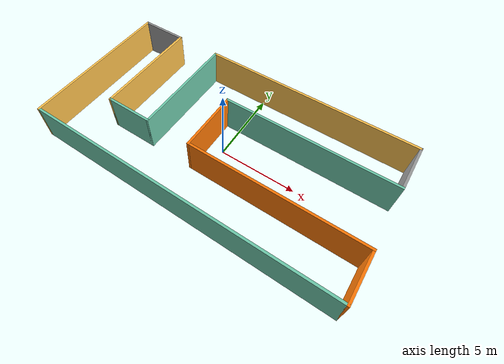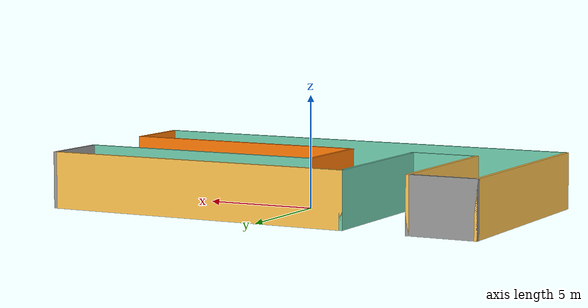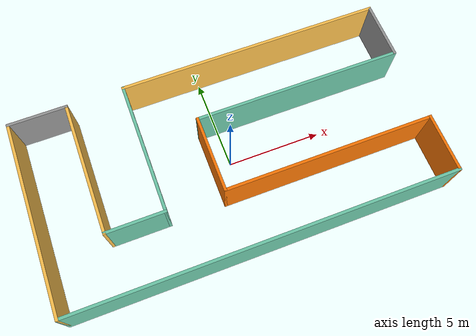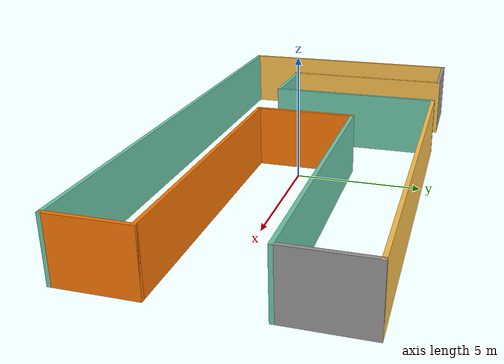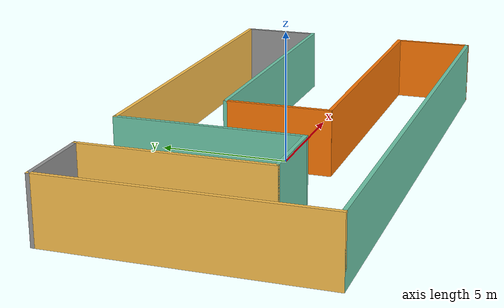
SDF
<?xml version='1.0'?>
<sdf version='1.6'>
  <model name='simplebuilding'>
    <pose frame=''>-0 0 0 0 -0 0</pose>
    <link name='Wall_0'>
      <collision name='Wall_0_Collision'>
        <geometry>
          <box>
            <size>10.15 0.15 2.5</size>
          </box>
        </geometry>
        <pose frame=''>0 0 1.25 0 -0 0</pose>
      </collision>
      <visual name='Wall_0_Visual'>
        <pose frame=''>0 0 1.25 0 -0 0</pose>
        <geometry>
          <box>
            <size>10.15 0.15 2.5</size>
          </box>
        </geometry>
        <material>
          <script>
            <uri>file://media/materials/scripts/gazebo.material</uri>
            <name>Gazebo/Grey</name>
          </script>
          <ambient>1 0.764706 0.305882 1</ambient>
        </material>
        <meta>
          <layer>0</layer>
        </meta>
      </visual>
      <pose frame=''>-10 0 0 0 0 -1.5708</pose>
    </link>
    <link name='Wall_10'>
      <collision name='Wall_10_Collision'>
        <geometry>
          <box>
            <size>7.15 0.15 2.5</size>
          </box>
        </geometry>
        <pose frame=''>0 0 1.25 0 -0 0</pose>
      </collision>
      <visual name='Wall_10_Visual'>
        <pose frame=''>0 0 1.25 0 -0 0</pose>
        <geometry>
          <box>
            <size>7.15 0.15 2.5</size>
          </box>
        </geometry>
        <material>
          <script>
            <uri>file://media/materials/scripts/gazebo.material</uri>
            <name>Gazebo/Grey</name>
          </script>
          <ambient>0.435294 0.796078 0.67451 1</ambient>
        </material>
        <meta>
          <layer>0</layer>
        </meta>
      </visual>
      <pose frame=''>-4 1.5 0 0 -0 1.5708</pose>
    </link>
    <link name='Wall_12'>
      <collision name='Wall_12_Collision'>
        <geometry>
          <box>
            <size>14.15 0.15 2.5</size>
          </box>
        </geometry>
        <pose frame=''>0 0 1.25 0 -0 0</pose>
      </collision>
      <visual name='Wall_12_Visual'>
        <pose frame=''>0 0 1.25 0 -0 0</pose>
        <geometry>
          <box>
            <size>14.15 0.15 2.5</size>
          </box>
        </geometry>
        <material>
          <script>
            <uri>file://media/materials/scripts/gazebo.material</uri>
            <name>Gazebo/Grey</name>
          </script>
          <ambient>1 0.764706 0.305882 1</ambient>
        </material>
        <meta>
          <layer>0</layer>
        </meta>
      </visual>
      <pose frame=''>3 5 0 0 -0 0</pose>
    </link>
    <link name='Wall_13'>
      <collision name='Wall_13_Collision'>
        <geometry>
          <box>
            <size>3.15 0.15 2.5</size>
          </box>
        </geometry>
        <pose frame=''>0 0 1.25 0 -0 0</pose>
      </collision>
      <visual name='Wall_13_Visual'>
        <pose frame=''>0 0 1.25 0 -0 0</pose>
        <geometry>
          <box>
            <size>3.15 0.15 2.5</size>
          </box>
        </geometry>
        <material>
          <script>
            <uri>file://media/materials/scripts/gazebo.material</uri>
            <name>Gazebo/Grey</name>
          </script>
          <ambient>1 1 1 1</ambient>
        </material>
        <meta>
          <layer>0</layer>
        </meta>
      </visual>
      <pose frame=''>10 3.5 0 0 0 -1.5708</pose>
    </link>
    <link name='Wall_15'>
      <collision name='Wall_15_Collision'>
        <geometry>
          <box>
            <size>11.15 0.15 2.5</size>
          </box>
        </geometry>
        <pose frame=''>0 0 1.25 0 -0 0</pose>
      </collision>
      <visual name='Wall_15_Visual'>
        <pose frame=''>0 0 1.25 0 -0 0</pose>
        <geometry>
          <box>
            <size>11.15 0.15 2.5</size>
          </box>
        </geometry>
        <material>
          <script>
            <uri>file://media/materials/scripts/gazebo.material</uri>
            <name>Gazebo/Grey</name>
          </script>
          <ambient>0.435294 0.796078 0.67451 1</ambient>
        </material>
        <meta>
          <layer>0</layer>
        </meta>
      </visual>
      <pose frame=''>4.5 2 0 0 -0 3.14159</pose>
    </link>
    <link name='Wall_17'>
      <collision name='Wall_17_Collision'>
        <geometry>
          <box>
            <size>4.15 0.15 2.5</size>
          </box>
        </geometry>
        <pose frame=''>0 0 1.25 0 -0 0</pose>
      </collision>
      <visual name='Wall_17_Visual'>
        <pose frame=''>0 0 1.25 0 -0 0</pose>
        <geometry>
          <box>
            <size>4.15 0.15 2.5</size>
          </box>
        </geometry>
        <material>
          <script>
            <uri>file://media/materials/scripts/gazebo.material</uri>
            <name>Gazebo/Grey</name>
          </script>
          <ambient>0.996078 0.47451 0.0196078 1</ambient>
        </material>
        <meta>
          <layer>0</layer>
        </meta>
      </visual>
      <pose frame=''>-1 0 0 0 0 -1.5708</pose>
    </link>
    <link name='Wall_19'>
      <collision name='Wall_19_Collision'>
        <geometry>
          <box>
            <size>11.15 0.15 2.5</size>
          </box>
        </geometry>
        <pose frame=''>0 0 1.25 0 -0 0</pose>
      </collision>
      <visual name='Wall_19_Visual'>
        <pose frame=''>0 0 1.25 0 -0 0</pose>
        <geometry>
          <box>
            <size>11.15 0.15 2.5</size>
          </box>
        </geometry>
        <material>
          <script>
            <uri>file://media/materials/scripts/gazebo.material</uri>
            <name>Gazebo/Grey</name>
          </script>
          <ambient>0.996078 0.47451 0.0196078 1</ambient>
        </material>
        <meta>
          <layer>0</layer>
        </meta>
      </visual>
      <pose frame=''>4.5 -2 0 0 -0 0</pose>
    </link>
    <link name='Wall_2'>
      <collision name='Wall_2_Collision'>
        <geometry>
          <box>
            <size>20.15 0.15 2.5</size>
          </box>
        </geometry>
        <pose frame=''>0 0 1.25 0 -0 0</pose>
      </collision>
      <visual name='Wall_2_Visual'>
        <pose frame=''>0 0 1.25 0 -0 0</pose>
        <geometry>
          <box>
            <size>20.15 0.15 2.5</size>
          </box>
        </geometry>
        <material>
          <script>
            <uri>file://media/materials/scripts/gazebo.material</uri>
            <name>Gazebo/Grey</name>
          </script>
          <ambient>0.435294 0.796078 0.67451 1</ambient>
        </material>
        <meta>
          <layer>0</layer>
        </meta>
      </visual>
      <pose frame=''>0 -5 0 0 -0 0</pose>
    </link>
    <link name='Wall_21'>
      <collision name='Wall_21_Collision'>
        <geometry>
          <box>
            <size>3.15 0.15 2.5</size>
          </box>
        </geometry>
        <pose frame=''>0 0 1.25 0 -0 0</pose>
      </collision>
      <visual name='Wall_21_Visual'>
        <pose frame=''>0 0 1.25 0 -0 0</pose>
        <geometry>
          <box>
            <size>3.15 0.15 2.5</size>
          </box>
        </geometry>
        <material>
          <script>
            <uri>file://media/materials/scripts/gazebo.material</uri>
            <name>Gazebo/Grey</name>
          </script>
          <ambient>0.996078 0.47451 0.0196078 1</ambient>
        </material>
        <meta>
          <layer>0</layer>
        </meta>
      </visual>
      <pose frame=''>10 -3.5 0 0 0 -1.5708</pose>
    </link>
    <link name='Wall_4'>
      <collision name='Wall_4_Collision'>
        <geometry>
          <box>
            <size>3.15 0.15 2.5</size>
          </box>
        </geometry>
        <pose frame=''>0 0 1.25 0 -0 0</pose>
      </collision>
      <visual name='Wall_4_Visual'>
        <pose frame=''>0 0 1.25 0 -0 0</pose>
        <geometry>
          <box>
            <size>3.15 0.15 2.5</size>
          </box>
        </geometry>
        <material>
          <script>
            <uri>file://media/materials/scripts/gazebo.material</uri>
            <name>Gazebo/Grey</name>
          </script>
          <ambient>1 1 1 1</ambient>
        </material>
        <meta>
          <layer>0</layer>
        </meta>
      </visual>
      <pose frame=''>-8.5 5 0 0 -0 0</pose>
    </link>
    <link name='Wall_6'>
      <collision name='Wall_6_Collision'>
        <geometry>
          <box>
            <size>7.15 0.15 2.5</size>
          </box>
        </geometry>
        <pose frame=''>0 0 1.25 0 -0 0</pose>
      </collision>
      <visual name='Wall_6_Visual'>
        <pose frame=''>0 0 1.25 0 -0 0</pose>
        <geometry>
          <box>
            <size>7.15 0.15 2.5</size>
          </box>
        </geometry>
        <material>
          <script>
            <uri>file://media/materials/scripts/gazebo.material</uri>
            <name>Gazebo/Grey</name>
          </script>
          <ambient>1 0.764706 0.305882 1</ambient>
        </material>
        <meta>
          <layer>0</layer>
        </meta>
      </visual>
      <pose frame=''>-7 1.5 0 0 0 -1.5708</pose>
    </link>
    <link name='Wall_8'>
      <collision name='Wall_8_Collision'>
        <geometry>
          <box>
            <size>3.15 0.15 2.5</size>
          </box>
        </geometry>
        <pose frame=''>0 0 1.25 0 -0 0</pose>
      </collision>
      <visual name='Wall_8_Visual'>
        <pose frame=''>0 0 1.25 0 -0 0</pose>
        <geometry>
          <box>
            <size>3.15 0.15 2.5</size>
          </box>
        </geometry>
        <material>
          <script>
            <uri>file://media/materials/scripts/gazebo.material</uri>
            <name>Gazebo/Grey</name>
          </script>
          <ambient>0.435294 0.796078 0.67451 1</ambient>
        </material>
        <meta>
          <layer>0</layer>
        </meta>
      </visual>
      <pose frame=''>-5.5 -2 0 0 -0 0</pose>
    </link>
    <static>1</static>
  </model>
</sdf>
